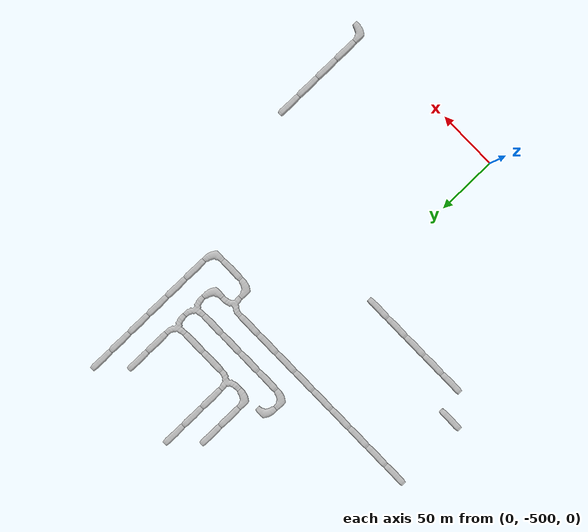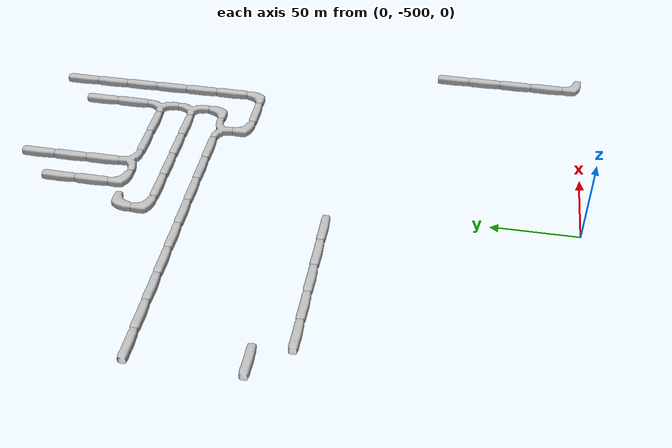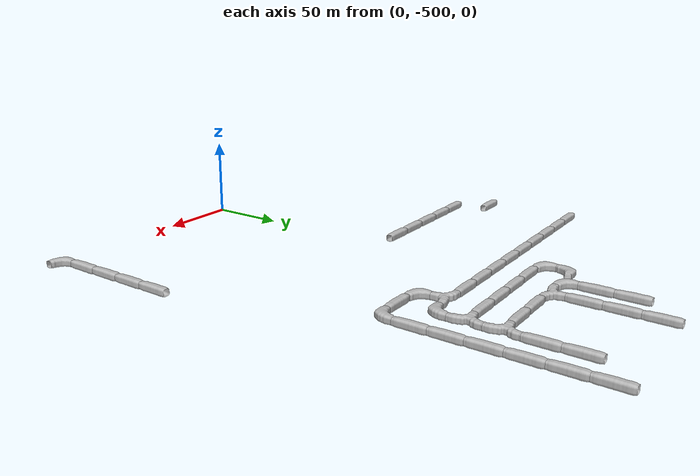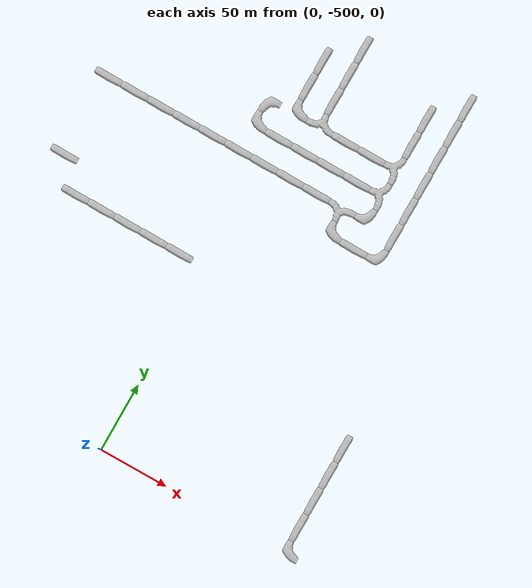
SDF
<sdf version="1.6">
 <world name="cave_8000_8">
  <include>
   <static>true</static>
   <name>cave_1_-9</name>
   <pose>20 -180 0 0 0 0.0</pose>
   <uri>model://cave_straight_20m</uri>
  </include>
  <include>
   <static>true</static>
   <name>cave_1_-10</name>
   <pose>20 -200 0 0 0 0.0</pose>
   <uri>model://cave_straight_20m</uri>
  </include>
  <include>
   <static>true</static>
   <name>cave_1_-11</name>
   <pose>20 -220 0 0 0 0.0</pose>
   <uri>model://cave_straight_20m</uri>
  </include>
  <include>
   <static>true</static>
   <name>cave_1_-12</name>
   <pose>20 -240 0 0 0 0.0</pose>
   <uri>model://cave_3way_20m</uri>
  </include>
  <include>
   <static>true</static>
   <name>cave_2_-12</name>
   <pose>40 -240 0 0 0 1.5707963267948966</pose>
   <uri>model://cave_straight_20m</uri>
  </include>
  <include>
   <static>true</static>
   <name>cave_3_-12</name>
   <pose>60 -240 0 0 0 1.5707963267948966</pose>
   <uri>model://cave_straight_20m</uri>
  </include>
  <include>
   <static>true</static>
   <name>cave_4_-12</name>
   <pose>80 -240 0 0 0 1.5707963267948966</pose>
   <uri>model://cave_3way_20m</uri>
  </include>
  <include>
   <static>true</static>
   <name>cave_4_-13</name>
   <pose>80 -260 0 0 0 1.5707963267948966</pose>
   <uri>model://cave_3way_20m</uri>
  </include>
  <include>
   <static>true</static>
   <name>cave_4_-14</name>
   <pose>80 -280 0 0 0 1.5707963267948966</pose>
   <uri>model://cave_L_20m</uri>
  </include>
  <include>
   <static>true</static>
   <name>cave_3_-14</name>
   <pose>60 -280 0 0 0 3.141592653589793</pose>
   <uri>model://cave_3way_20m</uri>
  </include>
  <include>
   <static>true</static>
   <name>cave_3_-15</name>
   <pose>60 -300 0 0 0 0.0</pose>
   <uri>model://cave_L_20m</uri>
  </include>
  <include>
   <static>true</static>
   <name>cave_4_-15</name>
   <pose>80 -300 0 0 0 1.5707963267948966</pose>
   <uri>model://cave_straight_20m</uri>
  </include>
  <include>
   <static>true</static>
   <name>cave_5_-15</name>
   <pose>100 -300 0 0 0 1.5707963267948966</pose>
   <uri>model://cave_L_20m</uri>
  </include>
  <include>
   <static>true</static>
   <name>cave_5_-14</name>
   <pose>100 -280 0 0 0 0.0</pose>
   <uri>model://cave_straight_20m</uri>
  </include>
  <include>
   <static>true</static>
   <name>cave_5_-13</name>
   <pose>100 -260 0 0 0 0.0</pose>
   <uri>model://cave_straight_20m</uri>
  </include>
  <include>
   <static>true</static>
   <name>cave_5_-12</name>
   <pose>100 -240 0 0 0 0.0</pose>
   <uri>model://cave_straight_20m</uri>
  </include>
  <include>
   <static>true</static>
   <name>cave_5_-11</name>
   <pose>100 -220 0 0 0 0.0</pose>
   <uri>model://cave_straight_20m</uri>
  </include>
  <include>
   <static>true</static>
   <name>cave_5_-10</name>
   <pose>100 -200 0 0 0 0.0</pose>
   <uri>model://cave_straight_20m</uri>
  </include>
  <include>
   <static>true</static>
   <name>cave_5_-9</name>
   <pose>100 -180 0 0 0 0.0</pose>
   <uri>model://cave_straight_20m</uri>
  </include>
  <include>
   <static>true</static>
   <name>cave_7_-21</name>
   <pose>140 -420 0 0 0 0.0</pose>
   <uri>model://cave_straight_20m</uri>
  </include>
  <include>
   <static>true</static>
   <name>cave_7_-22</name>
   <pose>140 -440 0 0 0 0.0</pose>
   <uri>model://cave_straight_20m</uri>
  </include>
  <include>
   <static>true</static>
   <name>cave_7_-23</name>
   <pose>140 -460 0 0 0 0.0</pose>
   <uri>model://cave_straight_20m</uri>
  </include>
  <include>
   <static>true</static>
   <name>cave_7_-24</name>
   <pose>140 -480 0 0 0 0.0</pose>
   <uri>model://cave_straight_20m</uri>
  </include>
  <include>
   <static>true</static>
   <name>cave_7_-25</name>
   <pose>140 -500 0 0 0 0.0</pose>
   <uri>model://cave_L_20m</uri>
  </include>
  <include>
   <static>true</static>
   <name>cave_2_-14</name>
   <pose>40 -280 0 0 0 1.5707963267948966</pose>
   <uri>model://cave_straight_20m</uri>
  </include>
  <include>
   <static>true</static>
   <name>cave_1_-14</name>
   <pose>20 -280 0 0 0 1.5707963267948966</pose>
   <uri>model://cave_straight_20m</uri>
  </include>
  <include>
   <static>true</static>
   <name>cave_0_-14</name>
   <pose>0 -280 0 0 0 1.5707963267948966</pose>
   <uri>model://cave_straight_20m</uri>
  </include>
  <include>
   <static>true</static>
   <name>cave_-1_-14</name>
   <pose>-20 -280 0 0 0 1.5707963267948966</pose>
   <uri>model://cave_straight_20m</uri>
  </include>
  <include>
   <static>true</static>
   <name>cave_-2_-14</name>
   <pose>-40 -280 0 0 0 1.5707963267948966</pose>
   <uri>model://cave_straight_20m</uri>
  </include>
  <include>
   <static>true</static>
   <name>cave_-3_-14</name>
   <pose>-60 -280 0 0 0 1.5707963267948966</pose>
   <uri>model://cave_straight_20m</uri>
  </include>
  <include>
   <static>true</static>
   <name>cave_-4_-14</name>
   <pose>-80 -280 0 0 0 1.5707963267948966</pose>
   <uri>model://cave_straight_20m</uri>
  </include>
  <include>
   <static>true</static>
   <name>cave_-5_-14</name>
   <pose>-100 -280 0 0 0 1.5707963267948966</pose>
   <uri>model://cave_straight_20m</uri>
  </include>
  <include>
   <static>true</static>
   <name>cave_-6_-14</name>
   <pose>-120 -280 0 0 0 1.5707963267948966</pose>
   <uri>model://cave_straight_20m</uri>
  </include>
  <include>
   <static>true</static>
   <name>cave_-5_-18</name>
   <pose>-100 -360 0 0 0 1.5707963267948966</pose>
   <uri>model://cave_straight_20m</uri>
  </include>
  <include>
   <static>true</static>
   <name>cave_-4_-18</name>
   <pose>-80 -360 0 0 0 1.5707963267948966</pose>
   <uri>model://cave_straight_20m</uri>
  </include>
  <include>
   <static>true</static>
   <name>cave_-3_-18</name>
   <pose>-60 -360 0 0 0 1.5707963267948966</pose>
   <uri>model://cave_straight_20m</uri>
  </include>
  <include>
   <static>true</static>
   <name>cave_-2_-18</name>
   <pose>-40 -360 0 0 0 1.5707963267948966</pose>
   <uri>model://cave_straight_20m</uri>
  </include>
  <include>
   <static>true</static>
   <name>cave_-1_-18</name>
   <pose>-20 -360 0 0 0 1.5707963267948966</pose>
   <uri>model://cave_straight_20m</uri>
  </include>
  <include>
   <static>true</static>
   <name>cave_-6_-17</name>
   <pose>-120 -340 0 0 0 1.5707963267948966</pose>
   <uri>model://cave_straight_20m</uri>
  </include>
  <include>
   <static>true</static>
   <name>cave_3_-13</name>
   <pose>60 -260 0 0 0 1.5707963267948966</pose>
   <uri>model://cave_straight_20m</uri>
  </include>
  <include>
   <static>true</static>
   <name>cave_2_-13</name>
   <pose>40 -260 0 0 0 1.5707963267948966</pose>
   <uri>model://cave_straight_20m</uri>
  </include>
  <include>
   <static>true</static>
   <name>cave_1_-13</name>
   <pose>20 -260 0 0 0 1.5707963267948966</pose>
   <uri>model://cave_straight_20m</uri>
  </include>
  <include>
   <static>true</static>
   <name>cave_0_-13</name>
   <pose>0 -260 0 0 0 1.5707963267948966</pose>
   <uri>model://cave_straight_20m</uri>
  </include>
  <include>
   <static>true</static>
   <name>cave_-1_-13</name>
   <pose>-20 -260 0 0 0 0.0</pose>
   <uri>model://cave_L_20m</uri>
  </include>
  <include>
   <static>true</static>
   <name>cave_-1_-12</name>
   <pose>-20 -240 0 0 0 -1.5707963267948966</pose>
   <uri>model://cave_L_20m</uri>
  </include>
  <include>
   <static>true</static>
   <name>cave_4_-11</name>
   <pose>80 -220 0 0 0 0.0</pose>
   <uri>model://cave_straight_20m</uri>
  </include>
  <include>
   <static>true</static>
   <name>cave_4_-10</name>
   <pose>80 -200 0 0 0 0.0</pose>
   <uri>model://cave_straight_20m</uri>
  </include>
  <include>
   <static>true</static>
   <name>cave_0_-12</name>
   <pose>0 -240 0 0 0 0.0</pose>
   <uri>model://cave_L_20m</uri>
  </include>
  <include>
   <static>true</static>
   <name>cave_0_-11</name>
   <pose>0 -220 0 0 0 0.0</pose>
   <uri>model://cave_straight_20m</uri>
  </include>
  <include>
   <static>true</static>
   <name>cave_0_-10</name>
   <pose>0 -200 0 0 0 0.0</pose>
   <uri>model://cave_straight_20m</uri>
  </include>
 </world>
</sdf>
